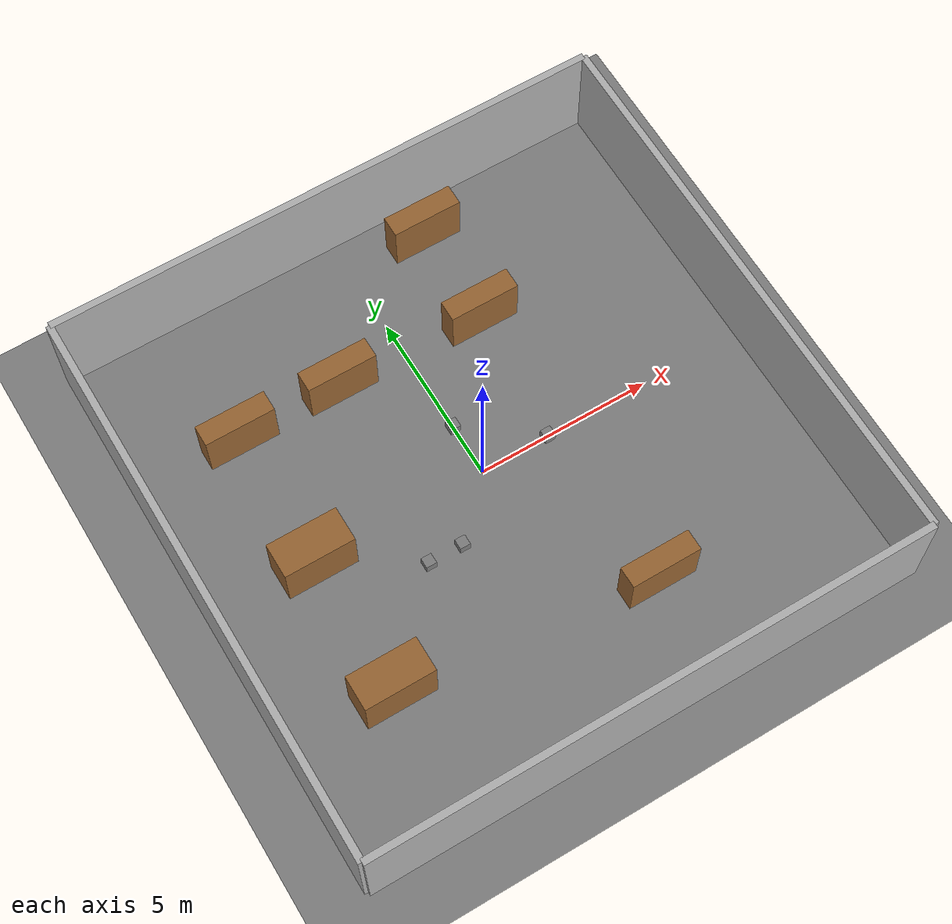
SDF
<?xml version="1.0" ?>
<sdf version="1.8">
  <world name="simple_warehouse">

    <!-- Physics -->
    <physics name="1ms" type="ignored">
      <max_step_size>0.001</max_step_size>
      <real_time_factor>1.0</real_time_factor>
    </physics>

    <!-- Plugins -->
    <plugin filename="gz-sim-physics-system" name="gz::sim::systems::Physics"/>
    <plugin filename="gz-sim-user-commands-system" name="gz::sim::systems::UserCommands"/>
    <plugin filename="gz-sim-scene-broadcaster-system" name="gz::sim::systems::SceneBroadcaster"/>
    <plugin filename="gz-sim-sensors-system" name="gz::sim::systems::Sensors">
      <render_engine>ogre2</render_engine>
    </plugin>
    <plugin filename="gz-sim-imu-system" name="gz::sim::systems::Imu"/>
    <plugin filename="gz-sim-contact-system" name="gz::sim::systems::Contact"/>

    <!-- Lighting -->
    <light type="directional" name="sun">
      <cast_shadows>true</cast_shadows>
      <pose>0 0 10 0 0 0</pose>
      <diffuse>0.8 0.8 0.8 1</diffuse>
      <specular>0.2 0.2 0.2 1</specular>
      <attenuation>
        <range>1000</range>
        <constant>0.9</constant>
        <linear>0.01</linear>
        <quadratic>0.001</quadratic>
      </attenuation>
      <direction>-0.5 0.1 -0.9</direction>
    </light>

    <!-- Ground Plane -->
    <model name="ground_plane">
      <static>true</static>
      <link name="link">
        <collision name="collision">
          <geometry>
            <plane>
              <normal>0 0 1</normal>
              <size>20 20</size>
            </plane>
          </geometry>
        </collision>
        <visual name="visual">
          <geometry>
            <plane>
              <normal>0 0 1</normal>
              <size>20 20</size>
            </plane>
          </geometry>
          <material>
            <ambient>0.3 0.3 0.3 1</ambient>
            <diffuse>0.5 0.5 0.5 1</diffuse>
          </material>
        </visual>
      </link>
    </model>

    <!-- Warehouse Walls -->
    <!-- North Wall -->
    <model name="wall_north">
      <static>true</static>
      <pose>0 8 1.5 0 0 0</pose>
      <link name="link">
        <collision name="collision">
          <geometry><box><size>16 0.2 3</size></box></geometry>
        </collision>
        <visual name="visual">
          <geometry><box><size>16 0.2 3</size></box></geometry>
          <material><ambient>0.6 0.6 0.6 1</ambient><diffuse>0.7 0.7 0.7 1</diffuse></material>
        </visual>
      </link>
    </model>

    <!-- South Wall -->
    <model name="wall_south">
      <static>true</static>
      <pose>0 -8 1.5 0 0 0</pose>
      <link name="link">
        <collision name="collision">
          <geometry><box><size>16 0.2 3</size></box></geometry>
        </collision>
        <visual name="visual">
          <geometry><box><size>16 0.2 3</size></box></geometry>
          <material><ambient>0.6 0.6 0.6 1</ambient><diffuse>0.7 0.7 0.7 1</diffuse></material>
        </visual>
      </link>
    </model>

    <!-- East Wall -->
    <model name="wall_east">
      <static>true</static>
      <pose>8 0 1.5 0 0 0</pose>
      <link name="link">
        <collision name="collision">
          <geometry><box><size>0.2 16 3</size></box></geometry>
        </collision>
        <visual name="visual">
          <geometry><box><size>0.2 16 3</size></box></geometry>
          <material><ambient>0.6 0.6 0.6 1</ambient><diffuse>0.7 0.7 0.7 1</diffuse></material>
        </visual>
      </link>
    </model>

    <!-- West Wall -->
    <model name="wall_west">
      <static>true</static>
      <pose>-8 0 1.5 0 0 0</pose>
      <link name="link">
        <collision name="collision">
          <geometry><box><size>0.2 16 3</size></box></geometry>
        </collision>
        <visual name="visual">
          <geometry><box><size>0.2 16 3</size></box></geometry>
          <material><ambient>0.6 0.6 0.6 1</ambient><diffuse>0.7 0.7 0.7 1</diffuse></material>
        </visual>
      </link>
    </model>

    <!-- Shelf Row 1 -->
    <model name="shelf_1a">
      <static>true</static>
      <pose>-5 4 0.75 0 0 0</pose>
      <link name="link">
        <collision name="collision">
          <geometry><box><size>2 0.6 1.5</size></box></geometry>
        </collision>
        <visual name="visual">
          <geometry><box><size>2 0.6 1.5</size></box></geometry>
          <material><ambient>0.4 0.3 0.2 1</ambient><diffuse>0.6 0.4 0.2 1</diffuse></material>
        </visual>
      </link>
    </model>

    <model name="shelf_1c">
      <static>true</static>
      <pose>-5 0 0.75 0 0 0</pose>
      <link name="link">
        <collision name="collision">
          <geometry><box><size>2 0.6 1.5</size></box></geometry>
        </collision>
        <visual name="visual">
          <geometry><box><size>2 1 1.5</size></box></geometry>
          <material><ambient>0.4 0.3 0.2 1</ambient><diffuse>0.6 0.4 0.2 1</diffuse></material>
        </visual>
      </link>
    </model>

    <model name="shelf_1d">
      <static>true</static>
      <pose>-5 -4 0.75 0 0 0</pose>
      <link name="link">
        <collision name="collision">
          <geometry><box><size>2 0.6 1.5</size></box></geometry>
        </collision>
        <visual name="visual">
          <geometry><box><size>2 1 1.5</size></box></geometry>
          <material><ambient>0.4 0.3 0.2 1</ambient><diffuse>0.6 0.4 0.2 1</diffuse></material>
        </visual>
      </link>
    </model>

    <model name="shelf_1b">
      <static>true</static>
      <pose>-2 4 0.75 0 0 0</pose>
      <link name="link">
        <collision name="collision">
          <geometry><box><size>2 0.6 1.5</size></box></geometry>
        </collision>
        <visual name="visual">
          <geometry><box><size>2 0.6 1.5</size></box></geometry>
          <material><ambient>0.4 0.3 0.2 1</ambient><diffuse>0.6 0.4 0.2 1</diffuse></material>
        </visual>
      </link>
    </model>

    <model name="shelf_3d">
      <static>true</static>
      <pose>2.24 -4.87 0.75 0 0 0</pose>
      <link name="link">
        <collision name="collision">
          <geometry><box><size>2 0.6 1.5</size></box></geometry>
        </collision>
        <visual name="visual">
          <geometry><box><size>2 0.6 1.5</size></box></geometry>
          <material><ambient>0.4 0.3 0.2 1</ambient><diffuse>0.6 0.4 0.2 1</diffuse></material>
        </visual>
      </link>
    </model>

    <model name="shelf_3e">
      <static>true</static>
      <pose>2.24 3.87 0.75 0 0 0</pose>
      <link name="link">
        <collision name="collision">
          <geometry><box><size>2 0.6 1.5</size></box></geometry>
        </collision>
        <visual name="visual">
          <geometry><box><size>2 0.6 1.5</size></box></geometry>
          <material><ambient>0.4 0.3 0.2 1</ambient><diffuse>0.6 0.4 0.2 1</diffuse></material>
        </visual>
      </link>
    </model>

    <model name="shelf_3f">
      <static>true</static>
      <pose>2.24 6.87 0.75 0 0 0</pose>
      <link name="link">
        <collision name="collision">
          <geometry><box><size>2 0.6 1.5</size></box></geometry>
        </collision>
        <visual name="visual">
          <geometry><box><size>2 0.6 1.5</size></box></geometry>
          <material><ambient>0.4 0.3 0.2 1</ambient><diffuse>0.6 0.4 0.2 1</diffuse></material>
        </visual>
      </link>
    </model>

    <model name="patrolling_box">
      <pose>0 1.5 0.1 0 0 0</pose>
      <link name="link">
        <inertial>
          <mass>4.0</mass> <!-- Increased mass for stability -->
          <inertia>
            <ixx>1.0</ixx> <ixy>0.0</ixy> <ixz>0.0</ixz>
            <iyy>1.0</iyy> <iyz>0.0</iyz>
            <izz>1.0</izz>
          </inertia>
        </inertial>
        <collision name="collision">
          <geometry><box><size>0.3 0.3 0.3</size></box></geometry>
          <surface>
            <friction>
              <ode><mu>0.0</mu><mu2>0.0</mu2></ode>
            </friction>
          </surface>
        </collision>
        <visual name="visual">
          <geometry><box><size>0.3 0.3 0.3</size></box></geometry>
          <material><ambient>0.5 0.5 0.5 1</ambient></material>
        </visual>
      </link>

      <joint name="patrolling_box_joint" type="prismatic">
        <parent>world</parent>
        <child>link</child>
        <axis>
          <xyz>0 1 0</xyz>
          <limit>
            <lower>-5</lower>
            <upper>5</upper>
            <effort>1000000.0</effort>
          </limit>
        </axis>
      </joint>

      <!-- Plugin to drive the joint with velocity -->
      <plugin filename="gz-sim-joint-controller-system" name="gz::sim::systems::JointController">
        <joint_name>patrolling_box_joint</joint_name>
        <initial_velocity>0.0</initial_velocity>
        <topic>/box_cmd_vel</topic>
      </plugin>
    </model>
    <model name="patrolling_box2">
      <pose>2 0 0.1 0 0 0</pose>
      <link name="link">
        <inertial>
          <mass>4.0</mass>
          <inertia>
            <ixx>1.0</ixx> <ixy>0.0</ixy> <ixz>0.0</ixz>
            <iyy>1.0</iyy> <iyz>0.0</iyz>
            <izz>1.0</izz>
          </inertia>
        </inertial>
        <collision name="collision">
          <geometry><box><size>0.3 0.3 0.3</size></box></geometry>
          <surface>
            <friction>
              <ode><mu>0.0</mu><mu2>0.0</mu2></ode>
            </friction>
          </surface>
        </collision>
        <visual name="visual">
          <geometry><box><size>0.3 0.3 0.3</size></box></geometry>
          <material><ambient>0.5 0.5 0.5 1</ambient></material>
        </visual>
      </link>

      <joint name="patrolling_box_joint" type="prismatic">
        <parent>world</parent>
        <child>link</child>
        <axis>
          <xyz>0 -1 0</xyz>
          <limit>
            <lower>-5</lower>
            <upper>5</upper>
            <effort>1000000.0</effort>
          </limit>
        </axis>
      </joint>

      <!-- Plugin to drive the joint with velocity -->
      <plugin filename="gz-sim-joint-controller-system" name="gz::sim::systems::JointController">
        <joint_name>patrolling_box_joint</joint_name>
        <initial_velocity>0.0</initial_velocity>
        <topic>/box_cmd_vel</topic>
      </plugin>
    </model>

    <model name="patrolling_box3">
      <pose>-2.5 -1.5 0.1 0 0 0</pose>
      <link name="link">
        <inertial>
          <mass>4.0</mass>
          <inertia>
            <ixx>1.0</ixx> <ixy>0.0</ixy> <ixz>0.0</ixz>
            <iyy>1.0</iyy> <iyz>0.0</iyz>
            <izz>1.0</izz>
          </inertia>
        </inertial>
        <collision name="collision">
          <geometry><box><size>0.3 0.3 0.3</size></box></geometry>
          <surface>
            <friction>
              <ode><mu>0.0</mu><mu2>0.0</mu2></ode>
            </friction>
          </surface>
        </collision>
        <visual name="visual">
          <geometry><box><size>0.3 0.3 0.3</size></box></geometry>
          <material><ambient>0.5 0.5 0.5 1</ambient></material>
        </visual>
      </link>

      <joint name="patrolling_box_joint" type="prismatic">
        <parent>world</parent>
        <child>link</child>
        <axis>
          <xyz>0 -1 0</xyz>
          <limit>
            <lower>-5</lower>
            <upper>5</upper>
            <effort>1000000.0</effort>
          </limit>
        </axis>
      </joint>

      <!-- Plugin to drive the joint with velocity -->
      <plugin filename="gz-sim-joint-controller-system" name="gz::sim::systems::JointController">
        <joint_name>patrolling_box_joint</joint_name>
        <initial_velocity>0.0</initial_velocity>
        <topic>/box_cmd_vel</topic>
      </plugin>
    </model>

    <model name="patrolling_box4">
      <pose>-1.5 -1.5 0.1 0 0 0</pose>
      <link name="link">
        <inertial>
          <mass>4.0</mass>
          <inertia>
            <ixx>1.0</ixx> <ixy>0.0</ixy> <ixz>0.0</ixz>
            <iyy>1.0</iyy> <iyz>0.0</iyz>
            <izz>1.0</izz>
          </inertia>
        </inertial>
        <collision name="collision">
          <geometry><box><size>0.3 0.3 0.3</size></box></geometry>
          <surface>
            <friction>
              <ode><mu>0.0</mu><mu2>0.0</mu2></ode>
            </friction>
          </surface>
        </collision>
        <visual name="visual">
          <geometry><box><size>0.3 0.3 0.3</size></box></geometry>
          <material><ambient>0.5 0.5 0.5 1</ambient></material>
        </visual>
      </link>

      <joint name="patrolling_box_joint" type="prismatic">
        <parent>world</parent>
        <child>link</child>
        <axis>
          <xyz>0 1 0</xyz>
          <limit>
            <lower>-5</lower>
            <upper>5</upper>
            <effort>1000000.0</effort>
          </limit>
        </axis>
      </joint>

      <!-- Plugin to drive the joint with velocity -->
      <plugin filename="gz-sim-joint-controller-system" name="gz::sim::systems::JointController">
        <joint_name>patrolling_box_joint</joint_name>
        <initial_velocity>0.0</initial_velocity>
        <topic>/box_cmd_vel</topic>
      </plugin>
    </model>

  </world>
</sdf>
